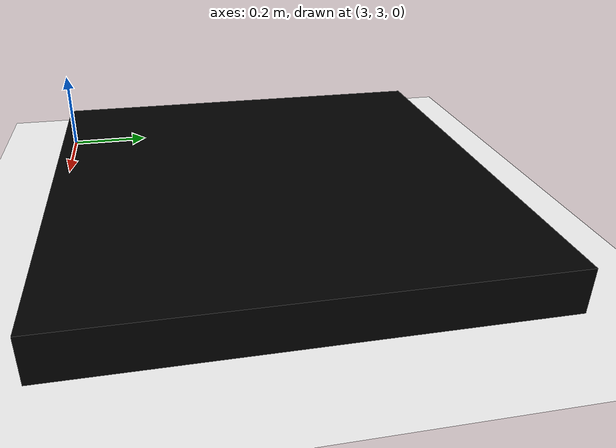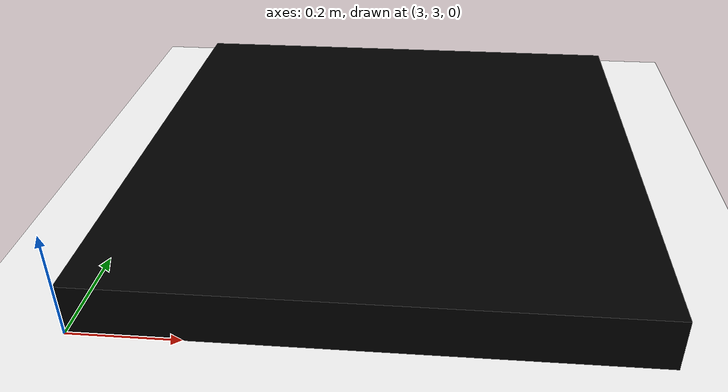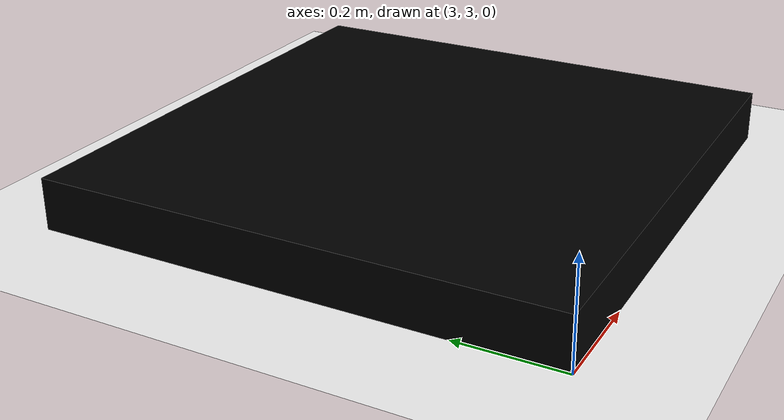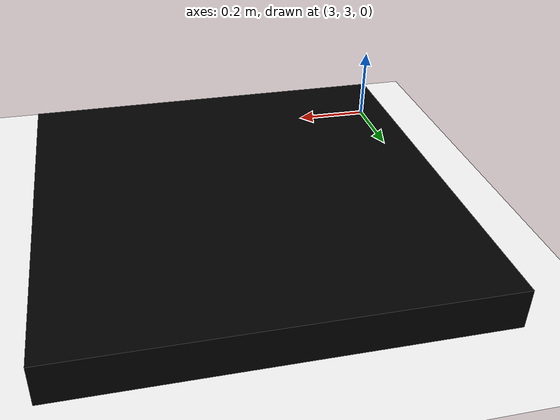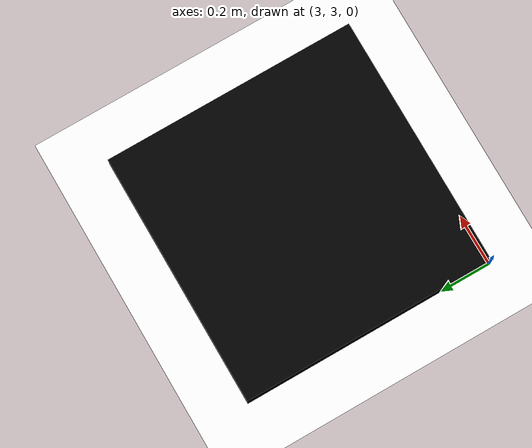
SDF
<?xml version="1.0"?>
<sdf version="1.9">
<world name="calibration_world">

<plugin filename="gz-sim-physics-system"
          name="gz::sim::systems::Physics"/>

<plugin filename="gz-sim-sensors-system"
          name="gz::sim::systems::Sensors"/>

<plugin filename="gz-sim-user-commands-system"
          name="gz::sim::systems::UserCommands"/>

<plugin filename="gz-sim-scene-broadcaster-system"
          name="gz::sim::systems::SceneBroadcaster"/>

<plugin filename="gz-sim-apply-link-wrench-system"
        name="gz::sim::systems::ApplyLinkWrench"/>

    <light name="sun_light" type="directional">
      <cast_shadows>true</cast_shadows>
      <pose>0 0 10 0 0 0</pose>
      <diffuse>1 1 1 1</diffuse>
      <specular>0.5 0.5 0.5 1</specular>
      <attenuation>
        <range>100</range>
        <constant>1.0</constant>
        <linear>0.0</linear>
        <quadratic>0.0</quadratic>
      </attenuation>
      <direction>-0.5 0.5 -1</direction>
    </light>

    <model name="ground">
      <static>true</static>
      <pose>0 0 0 0 0 0</pose>
      <link name="link">
        <collision name="collision">
          <geometry>
            <plane>
              <normal>0 0 1</normal>
              <size>10 10</size>
            </plane>
          </geometry>
        </collision>
        <visual name="visual">
          <geometry>
            <plane>
              <normal>0 0 1</normal>
              <size>10 10</size>
            </plane>
          </geometry>
          <material>
            <ambient>1 1 1 1</ambient>
            <diffuse>1 1 1 1</diffuse>
          </material>
        </visual>
      </link>
    </model>

    <model name="calib_cube_1">
      <pose>3.5 3.5 0.05 0 0 0</pose>
      <static>true</static>

      <link name="link">
        <collision name="collision">
          <geometry>
            <box><size>1 1 0.1</size></box>
          </geometry>
        </collision>

        <visual name="visual">
          <geometry>
            <box><size>1 1 0.1</size></box>
          </geometry>
          <material>
            <ambient>0 0 0 1</ambient>
            <diffuse>0 0 0 1</diffuse>
          </material>
        </visual>
      </link>
    </model>

    <model name="overhead_camera">
      <pose>0 0 5 0 1.57 0</pose>
      <static>true</static>
      <link name="link">
        <sensor name="camera_sensor" type="camera">
          <topic>/overhead_camera/image</topic>
          <always_on>1</always_on>
          <update_rate>30</update_rate>
          <camera>
            <horizontal_fov>1.396</horizontal_fov>
            <image>
              <width>640</width>
              <height>480</height>
              <format>R8G8B8</format>
            </image>
            <clip>
              <near>0.1</near>
              <far>100</far>
            </clip>
          </camera>
          <visualize>true</visualize>
        </sensor>
      </link>
    </model>
  </world>
</sdf>
